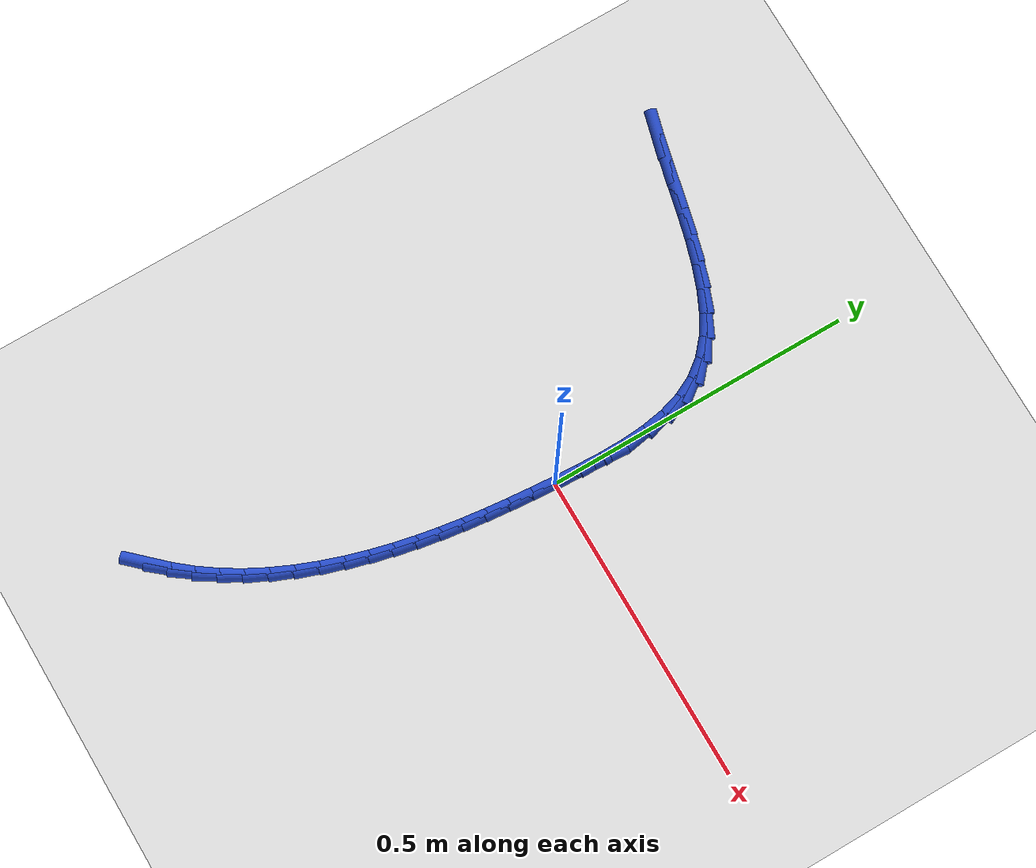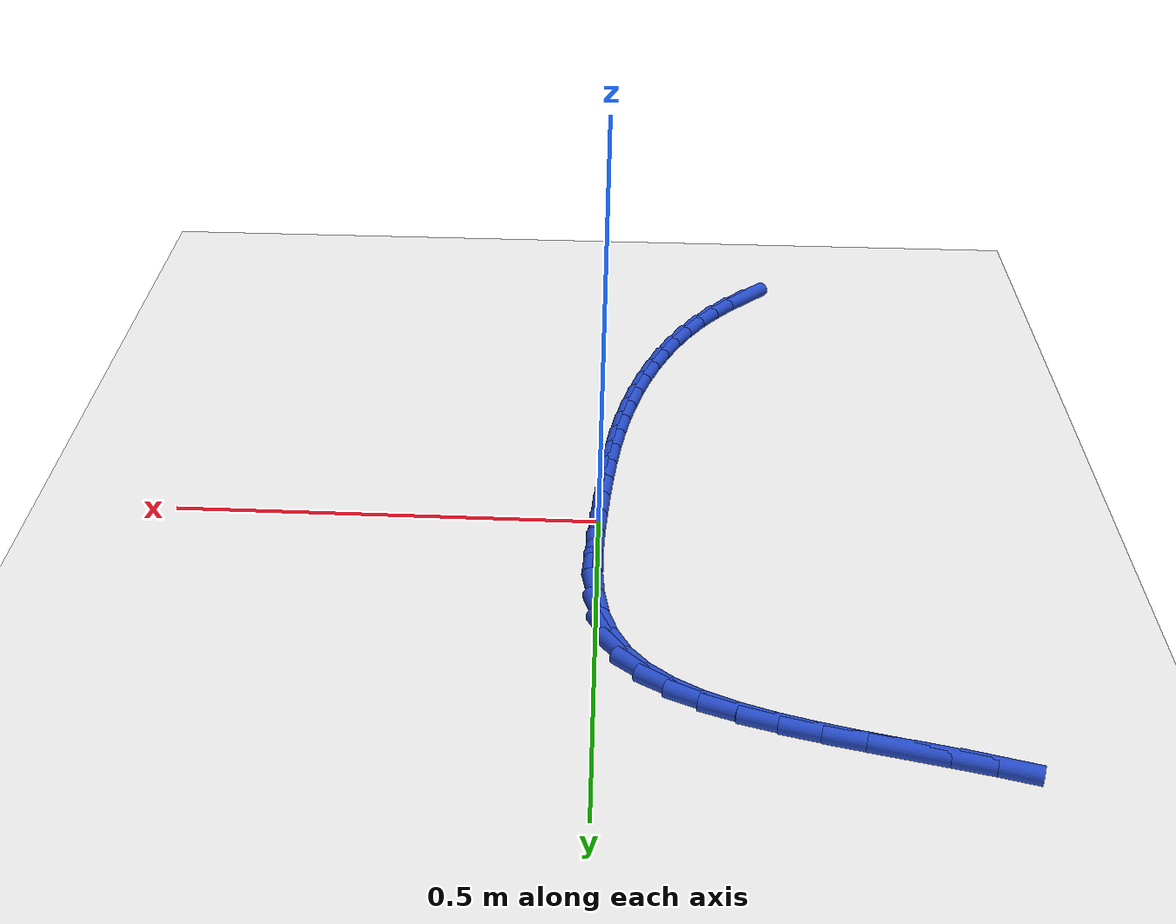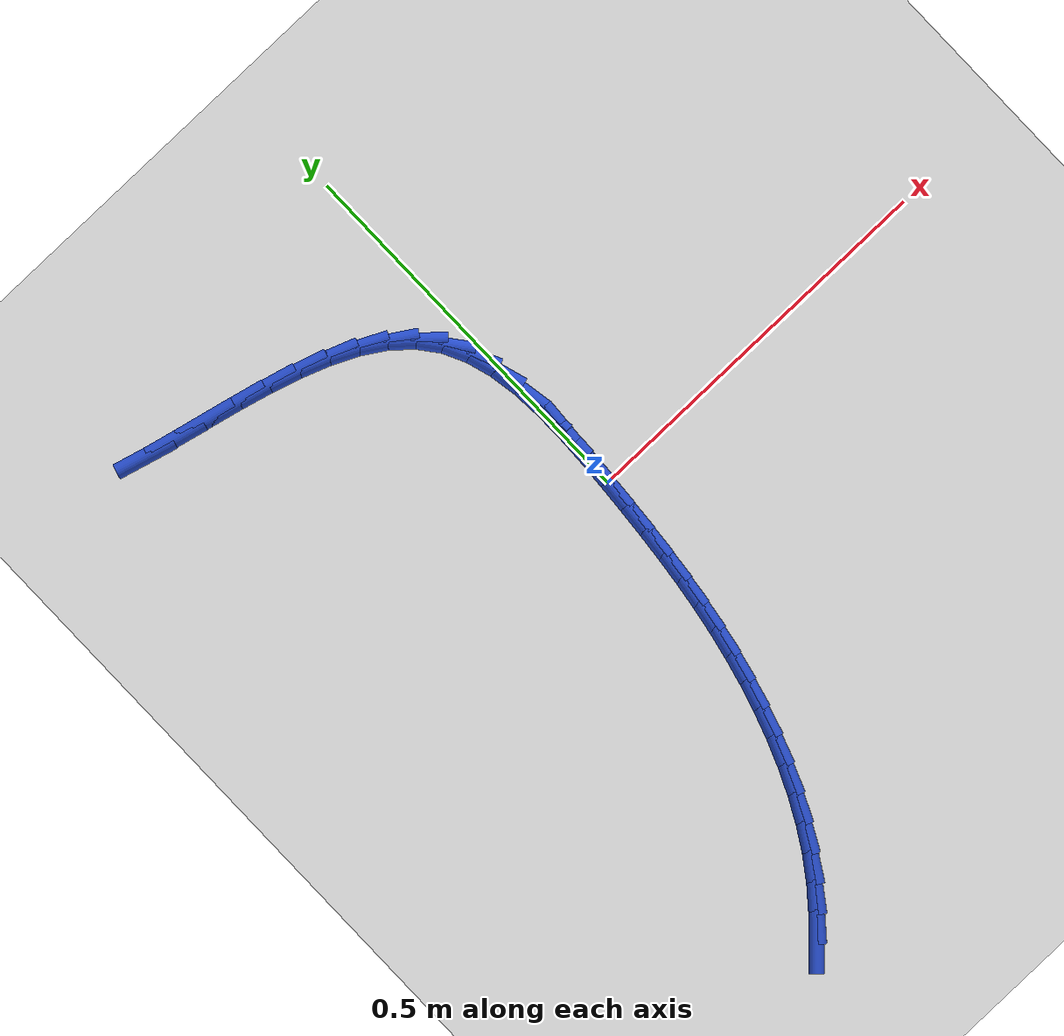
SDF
<sdf version="1.6">
 <world name="default">
  <model name="ground_plane">
   <static>1</static>
   <link name="link">
    <collision name="collision">
     <geometry><plane><normal>0 0 1</normal><size>100 100</size></plane></geometry>
     <surface><friction><ode><mu>100</mu><mu2>50</mu2></ode></friction></surface>
    </collision>
    <visual name="visual">
     <cast_shadows>0</cast_shadows>
     <geometry><plane><normal>0 0 1</normal><size>100 100</size></plane></geometry>
     <material>
      <script><uri>file://media/materials/scripts/gazebo.material</uri><name>Gazebo/WhiteGlow</name></script>
     </material>
    </visual>
   </link>
  </model>
  <model name="line">
   <link name="link_0">
    <pose>-2.0383000842727483e-17 -6.938893903907228e-17 0.01 0 1.57 1.5079676238680595</pose>
    <collision name="collision">
     <geometry><cylinder><radius>0.01</radius><length>0.08</length></cylinder></geometry>
    </collision>
    <visual name="visual">
     <material>
      <script><name>Gazebo/Blue</name><uri>file://media/materials/scripts/gazebo.material</uri></script>
     </material>
     <geometry><cylinder><radius>0.01</radius><length>0.08</length></cylinder></geometry>
    </visual>
   </link>
   <link name="link_1">
    <pose>0.002503821656769798 0.039799106238007725 0.01 0 1.57 1.5336063342336432</pose>
    <collision name="collision">
     <geometry><cylinder><radius>0.01</radius><length>0.08</length></cylinder></geometry>
    </collision>
    <visual name="visual">
     <material>
      <script><name>Gazebo/Blue</name><uri>file://media/materials/scripts/gazebo.material</uri></script>
     </material>
     <geometry><cylinder><radius>0.01</radius><length>0.08</length></cylinder></geometry>
    </visual>
   </link>
   <link name="link_2">
    <pose>0.003999209356199292 0.07998997780202757 0.01 0 1.57 -1.5634955819797465</pose>
    <collision name="collision">
     <geometry><cylinder><radius>0.01</radius><length>0.08</length></cylinder></geometry>
    </collision>
    <visual name="visual">
     <material>
      <script><name>Gazebo/Blue</name><uri>file://media/materials/scripts/gazebo.material</uri></script>
     </material>
     <geometry><cylinder><radius>0.01</radius><length>0.08</length></cylinder></geometry>
    </visual>
   </link>
   <link name="link_3">
    <pose>0.0037084110090023084 0.11982059617579742 0.01 0 1.57 -1.497198652115567</pose>
    <collision name="collision">
     <geometry><cylinder><radius>0.01</radius><length>0.08</length></cylinder></geometry>
    </collision>
    <visual name="visual">
     <material>
      <script><name>Gazebo/Blue</name><uri>file://media/materials/scripts/gazebo.material</uri></script>
     </material>
     <geometry><cylinder><radius>0.01</radius><length>0.08</length></cylinder></geometry>
    </visual>
   </link>
   <link name="link_4">
    <pose>0.0008536745258926979 0.15853894284305514 0.01 0 1.57 -1.4042201353368124</pose>
    <collision name="collision">
     <geometry><cylinder><radius>0.01</radius><length>0.08</length></cylinder></geometry>
    </collision>
    <visual name="visual">
     <material>
      <script><name>Gazebo/Blue</name><uri>file://media/materials/scripts/gazebo.material</uri></script>
     </material>
     <geometry><cylinder><radius>0.01</radius><length>0.08</length></cylinder></geometry>
    </visual>
   </link>
   <link name="link_5">
    <pose>-0.005342752182415693 0.19539299928753864 0.01 0 1.57 -1.2781463446124195</pose>
    <collision name="collision">
     <geometry><cylinder><radius>0.01</radius><length>0.08</length></cylinder></geometry>
    </collision>
    <visual name="visual">
     <material>
      <script><name>Gazebo/Blue</name><uri>file://media/materials/scripts/gazebo.material</uri></script>
     </material>
     <geometry><cylinder><radius>0.01</radius><length>0.08</length></cylinder></geometry>
    </visual>
   </link>
   <link name="link_6">
    <pose>-0.015658621205209035 0.22963074699298586 0.01 0 1.57 -1.1129093119912399</pose>
    <collision name="collision">
     <geometry><cylinder><radius>0.01</radius><length>0.08</length></cylinder></geometry>
    </collision>
    <visual name="visual">
     <material>
      <script><name>Gazebo/Blue</name><uri>file://media/materials/scripts/gazebo.material</uri></script>
     </material>
     <geometry><cylinder><radius>0.01</radius><length>0.08</length></cylinder></geometry>
    </visual>
   </link>
   <link name="link_7">
    <pose>-0.030871684631773456 0.26050016744313453 0.01 0 1.57 -0.9108062553281792</pose>
    <collision name="collision">
     <geometry><cylinder><radius>0.01</radius><length>0.08</length></cylinder></geometry>
    </collision>
    <visual name="visual">
     <material>
      <script><name>Gazebo/Blue</name><uri>file://media/materials/scripts/gazebo.material</uri></script>
     </material>
     <geometry><cylinder><radius>0.01</radius><length>0.08</length></cylinder></geometry>
    </visual>
   </link>
   <link name="link_8">
    <pose>-0.051681644125258296 0.28731405010835476 0.01 0 1.57 -0.7161671170750653</pose>
    <collision name="collision">
     <geometry><cylinder><radius>0.01</radius><length>0.08</length></cylinder></geometry>
    </collision>
    <visual name="visual">
     <material>
      <script><name>Gazebo/Blue</name><uri>file://media/materials/scripts/gazebo.material</uri></script>
     </material>
     <geometry><cylinder><radius>0.01</radius><length>0.08</length></cylinder></geometry>
    </visual>
   </link>
   <link name="link_9">
    <pose>-0.07789444962671288 0.31012729763539715 0.01 0 1.57 -0.5599707193890993</pose>
    <collision name="collision">
     <geometry><cylinder><radius>0.01</radius><length>0.08</length></cylinder></geometry>
    </collision>
    <visual name="visual">
     <material>
      <script><name>Gazebo/Blue</name><uri>file://media/materials/scripts/gazebo.material</uri></script>
     </material>
     <geometry><cylinder><radius>0.01</radius><length>0.08</length></cylinder></geometry>
    </visual>
   </link>
   <link name="link_10">
    <pose>-0.10874582263680659 0.3294682932011068 0.01 0 1.57 -0.4414363705972254</pose>
    <collision name="collision">
     <geometry><cylinder><radius>0.01</radius><length>0.08</length></cylinder></geometry>
    </collision>
    <visual name="visual">
     <material>
      <script><name>Gazebo/Blue</name><uri>file://media/materials/scripts/gazebo.material</uri></script>
     </material>
     <geometry><cylinder><radius>0.01</radius><length>0.08</length></cylinder></geometry>
    </visual>
   </link>
   <link name="link_11">
    <pose>-0.14346226366210146 0.34587307649482263 0.01 0 1.57 -0.3547438940363277</pose>
    <collision name="collision">
     <geometry><cylinder><radius>0.01</radius><length>0.08</length></cylinder></geometry>
    </collision>
    <visual name="visual">
     <material>
      <script><name>Gazebo/Blue</name><uri>file://media/materials/scripts/gazebo.material</uri></script>
     </material>
     <geometry><cylinder><radius>0.01</radius><length>0.08</length></cylinder></geometry>
    </visual>
   </link>
   <link name="link_12">
    <pose>-0.18127027320915934 0.359877687205883 0.01 0 1.57 -0.2938021960590582</pose>
    <collision name="collision">
     <geometry><cylinder><radius>0.01</radius><length>0.08</length></cylinder></geometry>
    </collision>
    <visual name="visual">
     <material>
      <script><name>Gazebo/Blue</name><uri>file://media/materials/scripts/gazebo.material</uri></script>
     </material>
     <geometry><cylinder><radius>0.01</radius><length>0.08</length></cylinder></geometry>
    </visual>
   </link>
   <link name="link_13">
    <pose>-0.22139635178454212 0.37201816502362717 0.01 0 1.57 -0.2538738371087145</pose>
    <collision name="collision">
     <geometry><cylinder><radius>0.01</radius><length>0.08</length></cylinder></geometry>
    </collision>
    <visual name="visual">
     <material>
      <script><name>Gazebo/Blue</name><uri>file://media/materials/scripts/gazebo.material</uri></script>
     </material>
     <geometry><cylinder><radius>0.01</radius><length>0.08</length></cylinder></geometry>
    </visual>
   </link>
   <link name="link_14">
    <pose>-0.2630669998948117 0.38283054963739377 0.01 0 1.57 -0.23185059781718584</pose>
    <collision name="collision">
     <geometry><cylinder><radius>0.01</radius><length>0.08</length></cylinder></geometry>
    </collision>
    <visual name="visual">
     <material>
      <script><name>Gazebo/Blue</name><uri>file://media/materials/scripts/gazebo.material</uri></script>
     </material>
     <geometry><cylinder><radius>0.01</radius><length>0.08</length></cylinder></geometry>
    </visual>
   </link>
   <link name="link_15">
    <pose>-0.30550871804653 0.3928508807365217 0.01 0 1.57 -0.22614181010170126</pose>
    <collision name="collision">
     <geometry><cylinder><radius>0.01</radius><length>0.08</length></cylinder></geometry>
    </collision>
    <visual name="visual">
     <material>
      <script><name>Gazebo/Blue</name><uri>file://media/materials/scripts/gazebo.material</uri></script>
     </material>
     <geometry><cylinder><radius>0.01</radius><length>0.08</length></cylinder></geometry>
    </visual>
   </link>
   <link name="link_16">
    <pose>-0.3479480067462591 0.4026151980103497 0.01 0 1.57 -0.23656909423214825</pose>
    <collision name="collision">
     <geometry><cylinder><radius>0.01</radius><length>0.08</length></cylinder></geometry>
    </collision>
    <visual name="visual">
     <material>
      <script><name>Gazebo/Blue</name><uri>file://media/materials/scripts/gazebo.material</uri></script>
     </material>
     <geometry><cylinder><radius>0.01</radius><length>0.08</length></cylinder></geometry>
    </visual>
   </link>
   <link name="link_17">
    <pose>-0.3896113665005606 0.41265954114821657 0.01 0 1.57 -0.26440056430822606</pose>
    <collision name="collision">
     <geometry><cylinder><radius>0.01</radius><length>0.08</length></cylinder></geometry>
    </collision>
    <visual name="visual">
     <material>
      <script><name>Gazebo/Blue</name><uri>file://media/materials/scripts/gazebo.material</uri></script>
     </material>
     <geometry><cylinder><radius>0.01</radius><length>0.08</length></cylinder></geometry>
    </visual>
   </link>
   <link name="link_213">
    <pose>-0.2010474640771553 -0.5841621045239043 0.01 0 1.57 0.8160176843663963</pose>
    <collision name="collision">
     <geometry><cylinder><radius>0.01</radius><length>0.08</length></cylinder></geometry>
    </collision>
    <visual name="visual">
     <material>
      <script><name>Gazebo/Blue</name><uri>file://media/materials/scripts/gazebo.material</uri></script>
     </material>
     <geometry><cylinder><radius>0.01</radius><length>0.08</length></cylinder></geometry>
    </visual>
   </link>
   <link name="link_214">
    <pose>-0.17616528847418553 -0.5577075308149129 0.01 0 1.57 0.8823672904920252</pose>
    <collision name="collision">
     <geometry><cylinder><radius>0.01</radius><length>0.08</length></cylinder></geometry>
    </collision>
    <visual name="visual">
     <material>
      <script><name>Gazebo/Blue</name><uri>file://media/materials/scripts/gazebo.material</uri></script>
     </material>
     <geometry><cylinder><radius>0.01</radius><length>0.08</length></cylinder></geometry>
    </visual>
   </link>
   <link name="link_215">
    <pose>-0.15304233549396867 -0.52960129947462 0.01 0 1.57 0.9550473672689199</pose>
    <collision name="collision">
     <geometry><cylinder><radius>0.01</radius><length>0.08</length></cylinder></geometry>
    </collision>
    <visual name="visual">
     <material>
      <script><name>Gazebo/Blue</name><uri>file://media/materials/scripts/gazebo.material</uri></script>
     </material>
     <geometry><cylinder><radius>0.01</radius><length>0.08</length></cylinder></geometry>
    </visual>
   </link>
   <link name="link_216">
    <pose>-0.13186318181094123 -0.49966655410097127 0.01 0 1.57 1.025436475558745</pose>
    <collision name="collision">
     <geometry><cylinder><radius>0.01</radius><length>0.08</length></cylinder></geometry>
    </collision>
    <visual name="visual">
     <material>
      <script><name>Gazebo/Blue</name><uri>file://media/materials/scripts/gazebo.material</uri></script>
     </material>
     <geometry><cylinder><radius>0.01</radius><length>0.08</length></cylinder></geometry>
    </visual>
   </link>
   <link name="link_217">
    <pose>-0.11265345270784007 -0.46800593557142545 0.01 0 1.57 1.0887166541482003</pose>
    <collision name="collision">
     <geometry><cylinder><radius>0.01</radius><length>0.08</length></cylinder></geometry>
    </collision>
    <visual name="visual">
     <material>
      <script><name>Gazebo/Blue</name><uri>file://media/materials/scripts/gazebo.material</uri></script>
     </material>
     <geometry><cylinder><radius>0.01</radius><length>0.08</length></cylinder></geometry>
    </visual>
   </link>
   <link name="link_218">
    <pose>-0.09533391857962535 -0.43490645971961184 0.01 0 1.57 1.1455460279096572</pose>
    <collision name="collision">
     <geometry><cylinder><radius>0.01</radius><length>0.08</length></cylinder></geometry>
    </collision>
    <visual name="visual">
     <material>
      <script><name>Gazebo/Blue</name><uri>file://media/materials/scripts/gazebo.material</uri></script>
     </material>
     <geometry><cylinder><radius>0.01</radius><length>0.08</length></cylinder></geometry>
    </visual>
   </link>
   <link name="link_219">
    <pose>-0.07982349567266944 -0.4006584026808179 0.01 0 1.57 1.196694434993181</pose>
    <collision name="collision">
     <geometry><cylinder><radius>0.01</radius><length>0.08</length></cylinder></geometry>
    </collision>
    <visual name="visual">
     <material>
      <script><name>Gazebo/Blue</name><uri>file://media/materials/scripts/gazebo.material</uri></script>
     </material>
     <geometry><cylinder><radius>0.01</radius><length>0.08</length></cylinder></geometry>
    </visual>
   </link>
   <link name="link_220">
    <pose>-0.0660411002333458 -0.36555204059033386 0.01 0 1.57 1.2429030784532529</pose>
    <collision name="collision">
     <geometry><cylinder><radius>0.01</radius><length>0.08</length></cylinder></geometry>
    </collision>
    <visual name="visual">
     <material>
      <script><name>Gazebo/Blue</name><uri>file://media/materials/scripts/gazebo.material</uri></script>
     </material>
     <geometry><cylinder><radius>0.01</radius><length>0.08</length></cylinder></geometry>
    </visual>
   </link>
   <link name="link_221">
    <pose>-0.05390564850802672 -0.329877649583447 0.01 0 1.57 1.2848618352465204</pose>
    <collision name="collision">
     <geometry><cylinder><radius>0.01</radius><length>0.08</length></cylinder></geometry>
    </collision>
    <visual name="visual">
     <material>
      <script><name>Gazebo/Blue</name><uri>file://media/materials/scripts/gazebo.material</uri></script>
     </material>
     <geometry><cylinder><radius>0.01</radius><length>0.08</length></cylinder></geometry>
    </visual>
   </link>
   <link name="link_222">
    <pose>-0.04333605674308485 -0.29392550579544585 0.01 0 1.57 1.323208762529609</pose>
    <collision name="collision">
     <geometry><cylinder><radius>0.01</radius><length>0.08</length></cylinder></geometry>
    </collision>
    <visual name="visual">
     <material>
      <script><name>Gazebo/Blue</name><uri>file://media/materials/scripts/gazebo.material</uri></script>
     </material>
     <geometry><cylinder><radius>0.01</radius><length>0.08</length></cylinder></geometry>
    </visual>
   </link>
   <link name="link_223">
    <pose>-0.03425075016309022 -0.25798306415456373 0.01 0 1.57 1.358707580774984</pose>
    <collision name="collision">
     <geometry><cylinder><radius>0.01</radius><length>0.08</length></cylinder></geometry>
    </collision>
    <visual name="visual">
     <material>
      <script><name>Gazebo/Blue</name><uri>file://media/materials/scripts/gazebo.material</uri></script>
     </material>
     <geometry><cylinder><radius>0.01</radius><length>0.08</length></cylinder></geometry>
    </visual>
   </link>
   <link name="link_224">
    <pose>-0.026537789089071194 -0.2221633154824817 0.01 0 1.57 1.3914665893348654</pose>
    <collision name="collision">
     <geometry><cylinder><radius>0.01</radius><length>0.08</length></cylinder></geometry>
    </collision>
    <visual name="visual">
     <material>
      <script><name>Gazebo/Blue</name><uri>file://media/materials/scripts/gazebo.material</uri></script>
     </material>
     <geometry><cylinder><radius>0.01</radius><length>0.08</length></cylinder></geometry>
    </visual>
   </link>
   <link name="link_225">
    <pose>-0.020037641188111095 -0.18630580300578048 0.01 0 1.57 1.4208471863306107</pose>
    <collision name="collision">
     <geometry><cylinder><radius>0.01</radius><length>0.08</length></cylinder></geometry>
    </collision>
    <visual name="visual">
     <material>
      <script><name>Gazebo/Blue</name><uri>file://media/materials/scripts/gazebo.material</uri></script>
     </material>
     <geometry><cylinder><radius>0.01</radius><length>0.08</length></cylinder></geometry>
    </visual>
   </link>
   <link name="link_226">
    <pose>-0.014586617909375797 -0.1502261900515178 0.01 0 1.57 1.4463109661362605</pose>
    <collision name="collision">
     <geometry><cylinder><radius>0.01</radius><length>0.08</length></cylinder></geometry>
    </collision>
    <visual name="visual">
     <material>
      <script><name>Gazebo/Blue</name><uri>file://media/materials/scripts/gazebo.material</uri></script>
     </material>
     <geometry><cylinder><radius>0.01</radius><length>0.08</length></cylinder></geometry>
    </visual>
   </link>
   <link name="link_227">
    <pose>-0.010021030702031173 -0.113740139946751 0.01 0 1.57 1.4674930692803474</pose>
    <collision name="collision">
     <geometry><cylinder><radius>0.01</radius><length>0.08</length></cylinder></geometry>
    </collision>
    <visual name="visual">
     <material>
      <script><name>Gazebo/Blue</name><uri>file://media/materials/scripts/gazebo.material</uri></script>
     </material>
     <geometry><cylinder><radius>0.01</radius><length>0.08</length></cylinder></geometry>
    </visual>
   </link>
   <link name="link_228">
    <pose>-0.006177191015243007 -0.07666331601853667 0.01 0 1.57 1.4842072327861506</pose>
    <collision name="collision">
     <geometry><cylinder><radius>0.01</radius><length>0.08</length></cylinder></geometry>
    </collision>
    <visual name="visual">
     <material>
      <script><name>Gazebo/Blue</name><uri>file://media/materials/scripts/gazebo.material</uri></script>
     </material>
     <geometry><cylinder><radius>0.01</radius><length>0.08</length></cylinder></geometry>
    </visual>
   </link>
   <link name="link_229">
    <pose>-0.0028914102981773635 -0.038811381593934144 0.01 0 1.57 1.4964346650405358</pose>
    <collision name="collision">
     <geometry><cylinder><radius>0.01</radius><length>0.08</length></cylinder></geometry>
    </collision>
    <visual name="visual">
     <material>
      <script><name>Gazebo/Blue</name><uri>file://media/materials/scripts/gazebo.material</uri></script>
     </material>
     <geometry><cylinder><radius>0.01</radius><length>0.08</length></cylinder></geometry>
    </visual>
   </link>
   <link name="link_230">
    <pose>-1.1275702593849246e-17 2.7755575615628914e-17 0.01 0 1.57 1.5043016511431724</pose>
    <collision name="collision">
     <geometry><cylinder><radius>0.01</radius><length>0.08</length></cylinder></geometry>
    </collision>
    <visual name="visual">
     <material>
      <script><name>Gazebo/Blue</name><uri>file://media/materials/scripts/gazebo.material</uri></script>
     </material>
     <geometry><cylinder><radius>0.01</radius><length>0.08</length></cylinder></geometry>
    </visual>
   </link>
   <link name="link_231">
    <pose>0.002660728430123171 0.03995516543620836 0.01 0 1.57 1.5080510694178575</pose>
    <collision name="collision">
     <geometry><cylinder><radius>0.01</radius><length>0.08</length></cylinder></geometry>
    </collision>
    <visual name="visual">
     <material>
      <script><name>Gazebo/Blue</name><uri>file://media/materials/scripts/gazebo.material</uri></script>
     </material>
     <geometry><cylinder><radius>0.01</radius><length>0.08</length></cylinder></geometry>
    </visual>
   </link>
   <link name="link_232">
    <pose>0.0052544635430263106 0.08123845138763336 0.01 0 1.57 1.506206781487255</pose>
    <collision name="collision">
     <geometry><cylinder><radius>0.01</radius><length>0.08</length></cylinder></geometry>
    </collision>
    <visual name="visual">
     <material>
      <script><name>Gazebo/Blue</name><uri>file://media/materials/scripts/gazebo.material</uri></script>
     </material>
     <geometry><cylinder><radius>0.01</radius><length>0.08</length></cylinder></geometry>
    </visual>
   </link>
  </model>
 </world>
</sdf>
